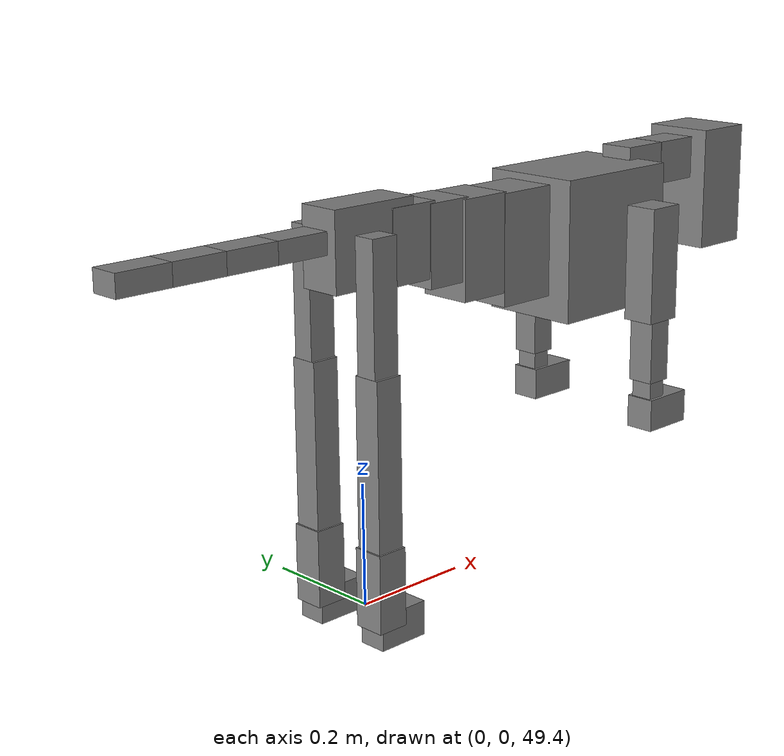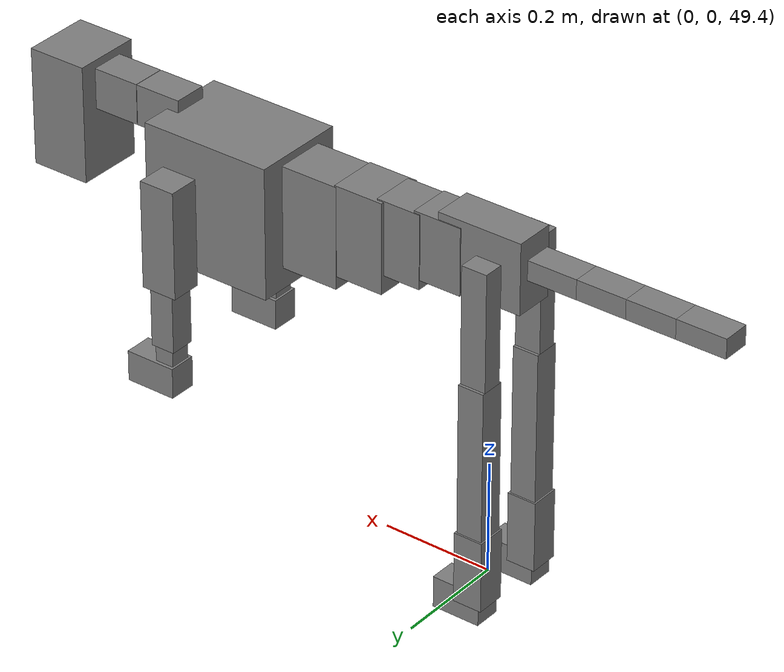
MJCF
<mujoco model="dog">

    <default>
        <joint armature="0.02" stiffness="1" damping="0.2" limited="true"/>
        <geom condim="3" friction="1 0.05 0.05" margin="0.01"/>
        <motor ctrllimited="true" ctrlrange="-1.0 1.0" forcelimited="true" gear="50"/>
    </default>

    <compiler inertiafromgeom="true" angle="radian"/>

    <option timestep="0.016" iterations="50" tolerance="1e-10" solver="Newton" jacobian="dense" cone="pyramidal"/>

    <size nconmax="20000" njmax="60000" nstack="5000000"/>
    <visual>
        <map force="0.1" zfar="30"/>
        <rgba haze="0.15 0.25 0.35 1"/>
        <quality shadowsize="2048"/>
        <global offwidth="800" offheight="800"/>
    </visual>

    <asset>
        <texture type="skybox" builtin="gradient" rgb1="0.3 0.5 0.7" rgb2="0 0 0" width="512" height="512"/>
        <texture name="texplane" type="2d" builtin="checker" rgb1=".2 .3 .4" rgb2=".1 0.15 0.2" width="512" height="512"
                 mark="cross" markrgb=".8 .8 .8"/>
        <texture name="texgeom" type="cube" builtin="flat" mark="cross" width="127" height="1278" rgb1="0.8 0.6 0.4"
                 rgb2="0.8 0.6 0.4" markrgb="1 1 1" random="0.01"/>

        <material name="matplane" reflectance="0.3" texture="texplane" texrepeat="1 1" texuniform="true"/>
        <material name="matgeom" texture="texgeom" texuniform="true" rgba="0.8 0.6 .4 1"/>
    </asset>

    <worldbody>
        <geom name="floor" pos="0 0 0" size="0 0 .25" type="plane" material="matplane" condim="3"/>

        <light directional="false" diffuse=".2 .2 .2" specular="0 0 0" pos="0 0 5" dir="0 0 -1" castshadow="false"/>
        <light mode="targetbodycom" target="torso" directional="false" diffuse=".8 .8 .8" specular="0.3 0.3 0.3"
               pos="0 0 4.0" dir="0 0 -1"/>

        <body name="root" pos="0 0 50">
            <freejoint name="root_1"/>
            <geom type="box" pos="0 0 -0.02" size="0.0774  0.0358  0.063" density="2030"/>

            <body name="spine1" pos="0.054 0 0">
                <joint name="spine1_y" axis="0 1 0" range="0 0.7" limited="true"/>
                <geom type="box" pos="0.02375 0 -0.03" size="0.04375  0.0375  0.05985" density="2030"/>

                <body name="spine2" pos="0.0612 0 0">
                    <joint name="spine2_y" axis="0 1 0" range="-0.15 0.15" limited="true"/>
                    <geom type="box" pos="0.03555  0  -0.04" size="0.04055  0.039  0.06615" density="2030"/>

                    <body name="spine3" pos="0.0730 0 0">
                        <joint name="spine3_y" axis="0 1 0" range="-0.15 0.15" limited="true"/>
                        <geom type="box" pos="0.03555  0  -0.057" size="0.04555  0.0445  0.081" density="2030"/>

                        <body name="spine4" pos="0.0780 0 0">
                            <joint name="spine4_y" axis="0 1 0" range="-0.15 0.15" limited="true"/>
                            <geom type="box" pos="0.05265  0  -0.07" size="0.05265  0.045  0.09135" density="2030"/>

                            <body name="torso" pos="0.1082 0 0">
                                <joint name="torso_y" axis="0 1 0" range="-0.15 0.15" limited="true"/>
                                <geom type="box" pos="0.11925  0  -0.085" size="0.11925  0.085  0.11745"
                                      density="2030"/>

                                <body name="neck1" pos="0.2160  0   0.0180">
                                    <joint name="neck1_y" axis="0 1 0" range="-1.2  -1" limited="true"/>
                                    <geom type="box" pos="0.0423  0  0" size="0.0423  0.03  0.036" density="2325"/>

                                    <body name="neck2" pos="0.0853  0  0">
                                        <joint name="neck2_y" axis="0 1 0" range="0.1  0" limited="true"/>
                                        <geom type="box" pos="0.0423  0  0" size="0.0423  0.03  0.036" density="2325"/>

                                        <body name="head" pos="0.0853  0  0">
                                            <joint name="head_y" axis="0 1 0" range="-0.3  -0.2" limited="true"/>
                                            <geom type="box" pos="0.0531  0  -0.055" size="0.0531  0.06  0.1044"
                                                  density="4030"/>

                                        </body>
                                    </body>
                                </body>

                                <body name="front_shoulder" pos="0.156  0   -0.0480">
                                    <joint name="front_shoulder_y" axis="0 1 0" range="-1 1.5" limited="true"/>
                                    <geom type="box" pos="0 0.13 -0.0693" size="0.0324  0.0277  0.0960" density="1158"/>
                                    <geom type="box" pos="0 -0.13 -0.0693" size="0.0324  0.0277  0.0960"
                                          density="1158"/>

                                    <body name="front_elbow" pos="0  0  -0.1386">
                                        <joint name="front_elbow_y" axis="0 1 0" range="-2 0" limited="true"/>
                                        <geom type="box" pos="0 0.13 -0.0660" size="0.0219  0.0224  0.0660"
                                              density="1081"/>
                                        <geom type="box" pos="0 -0.13 -0.0660" size="0.0219  0.0224  0.0660"
                                              density="1081"/>

                                        <body name="front_wrist" pos="0  0  -0.1319">
                                            <joint name="front_wrist_y" axis="0 1 0" range="-0.2 0" limited="true"/>
                                            <geom type="box" pos="0 0.13 -0.0221" size="0.0170  0.0189  0.0353"
                                                  density="1664"/>
                                            <geom type="box" pos="0 -0.13 -0.0221" size="0.0170  0.0189  0.0353"
                                                  density="1664"/>

                                            <body name="front_finger_end" pos="0  0  -0.0443">
                                                <joint name="front_finger_y" axis="0 1 0" range="-0.4 1"
                                                       limited="true"/>
                                                <geom type="box" pos="0.0248  0.13  -0.0121"
                                                      size="0.0454  0.0248  0.0271" density="1515"/>
                                                <geom type="box" pos="0.0248  -0.13  -0.0121"
                                                      size="0.0454  0.0248  0.0271" density="1515"/>

                                            </body>

                                        </body>
                                    </body>
                                </body>

                            </body>
                        </body>
                    </body>
                </body>
            </body>

            <body name="back_hip" pos="-0.03 0 -0.018">
                <joint name="back_hip_y" axis="0 1 0" range="-1.5 0.3" limited="true"/>
                <geom type="box" pos="0 0.07 -0.1011" size="0.0233  0.0183  0.1239" density="1154"/>
                <geom type="box" pos="0 -0.07 -0.1011" size="0.0233  0.0183  0.1239" density="1154"/>

                <body name="back_knee" pos="0  0  -0.2022">
                    <joint name="back_knee_y" axis="0 1 0" range="0 2.8" limited="true"/>
                    <geom type="box" pos="0 0.07 -0.1331" size="0.0235  0.0232  0.1487" density="1227"/>
                    <geom type="box" pos="0 -0.07 -0.1331" size="0.0235  0.0232  0.1487" density="1227"/>

                    <body name="back_ankle" pos="0  0  -0.2662">
                        <joint name="back_ankle_y" axis="0 1 0" range="-2.2 0" limited="true"/>
                        <geom type="box" pos="0 0.07 -0.0524" size="0.0263  0.0263  0.0637" density="1284"/>
                        <geom type="box" pos="0 -0.07 -0.0524" size="0.0263  0.0263  0.0637" density="1284"/>

                        <body name="back_toe_end" pos="0  0  -0.1048">
                            <joint name="back_toe_y" axis="0 1 0" range="-0.4 1" limited="true"/>
                            <geom type="box" pos="0.0239  0.07  -0.0131" size="0.0437  0.0239  0.0281" density="1515"/>
                            <geom type="box" pos="0.0239  -0.07  -0.0131" size="0.0437  0.0239  0.0281" density="1515"/>

                        </body>
                    </body>
                </body>
            </body>

            <body name="tail1" pos="-0.074 0 -0.006">
                <joint name="tail1_y" axis="0 1 0" range="-0.2 0.2" limited="true"/>
                <geom type="box" pos="-0.0536  0  0" size="0.045  0.025  0.0175" density="1587"/>

                <body name="tail2" pos="-0.09 0 0">
                    <joint name="tail2_y" axis="0 1 0" range="-0.2 0.2" limited="true"/>
                    <geom type="box" pos="-0.0536  0  0" size="0.045  0.025  0.0175" density="1587"/>

                    <body name="tail3" pos="-0.09 0 0">
                        <joint name="tail3_y" axis="0 1 0" range="-0.2 0.2" limited="true"/>
                        <geom type="box" pos="-0.0536  0  0" size="0.045  0.025  0.0175" density="1587"/>

                        <body name="tail4" pos="-0.09 0 0">
                            <joint name="tail4_y" axis="0 1 0" range="-0.2 0.2" limited="true"/>
                            <geom type="box" pos="-0.0536  0  0" size="0.045  0.025  0.0175" density="1587"/>

                        </body>
                    </body>
                </body>
            </body>
        </body>
    </worldbody>

    <actuator>
        <motor joint="spine1_y" forcerange="-150 150     "/>
        <motor joint="spine2_y" forcerange="-150 150     "/>
        <motor joint="spine3_y" forcerange="-150 150     "/>
        <motor joint="spine4_y" forcerange="-150 150     "/>
        <motor joint="torso_y" forcerange="-150 150     "/>
        <motor joint="neck1_y" forcerange="-100 100       "/>
        <motor joint="neck2_y" forcerange="-100 100       "/>
        <motor joint="head_y" forcerange="-150 150       "/>
        <motor joint="front_shoulder_y" forcerange="-159.66 125.21"/>
        <motor joint="front_elbow_y" forcerange="-110.75 152.02"/>
        <motor joint="front_wrist_y" forcerange="-76.56 74.46"/>
        <motor joint="front_finger_y" forcerange="-50.68 41.51"/>
        <motor joint="back_hip_y" forcerange="-205.22 238.61"/>
        <motor joint="back_knee_y" forcerange="-274.89 261.98"/>
        <motor joint="back_angle_y" forcerange="-163.41 156.95"/>
        <motor joint="back_toe_y" forcerange="-61.65 49.21"/>
        <motor joint="tail1_y" forcerange="-50 50     "/>
        <motor joint="tail2_y" forcerange="-50 50     "/>
        <motor joint="tail3_y" forcerange="-50 50     "/>
        <motor joint="tail4_y" forcerange="-50 50     "/>
    </actuator>
</mujoco>
